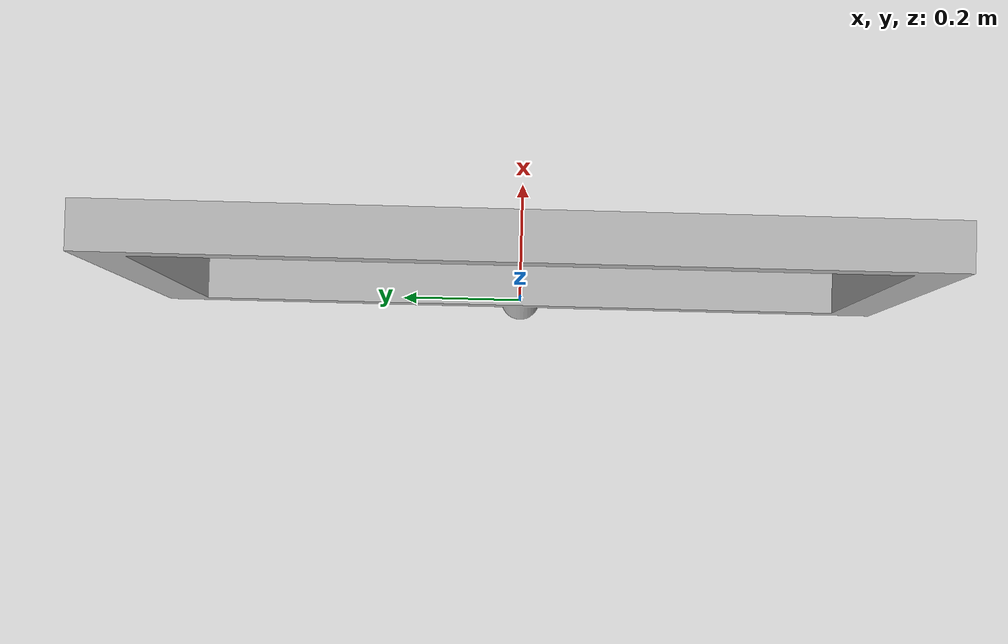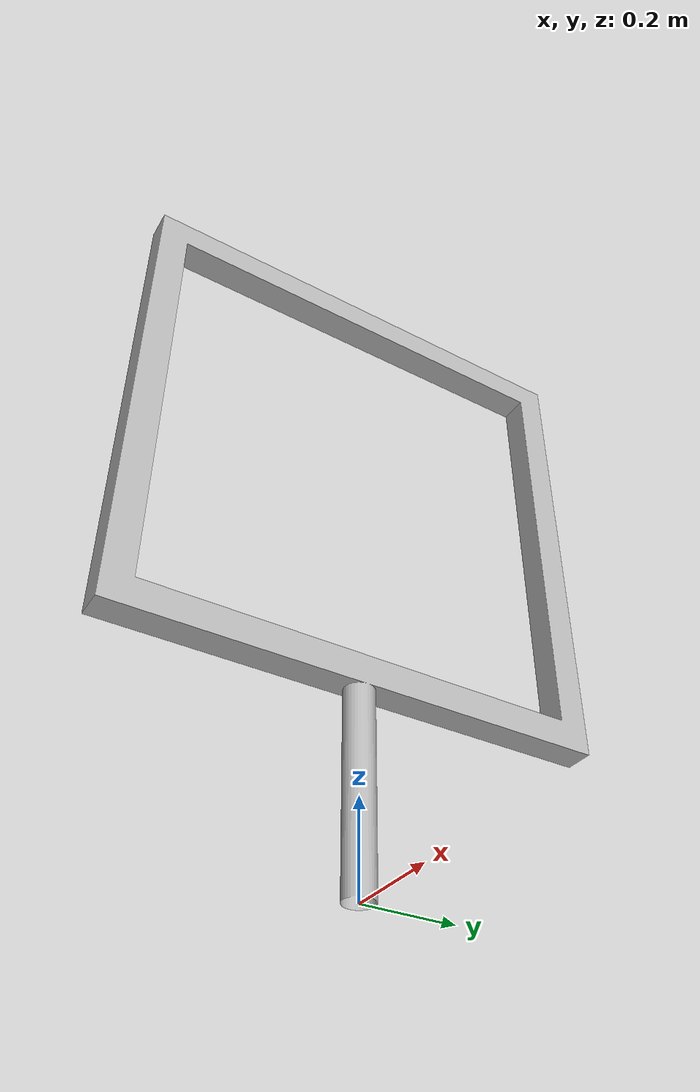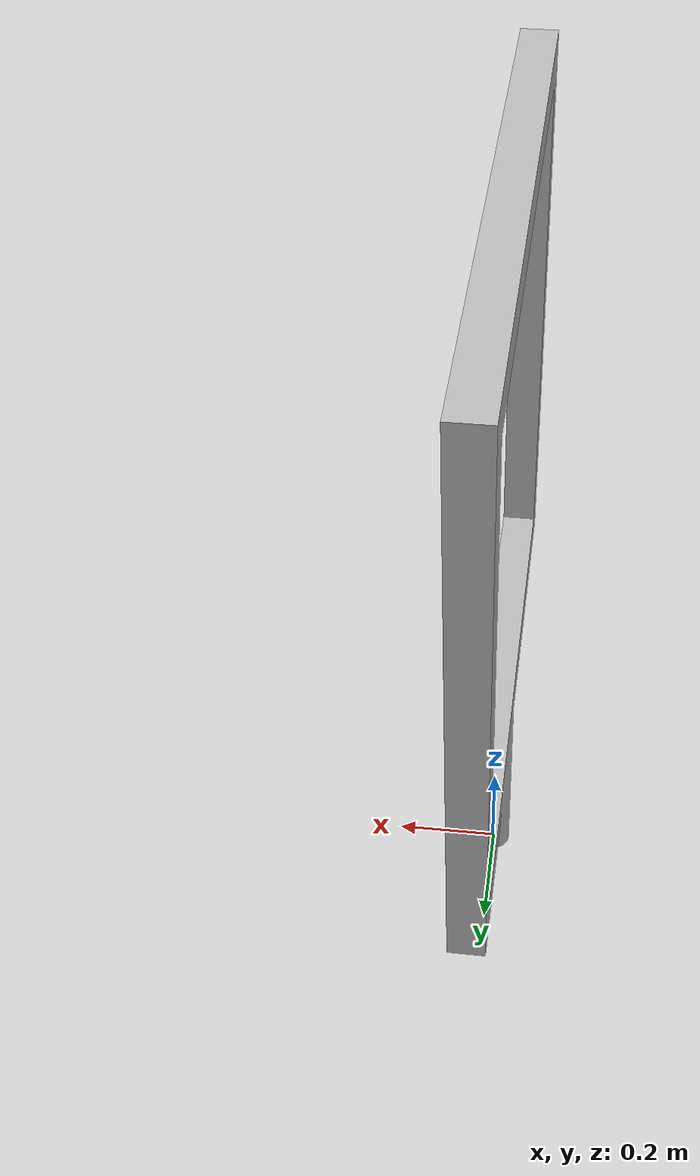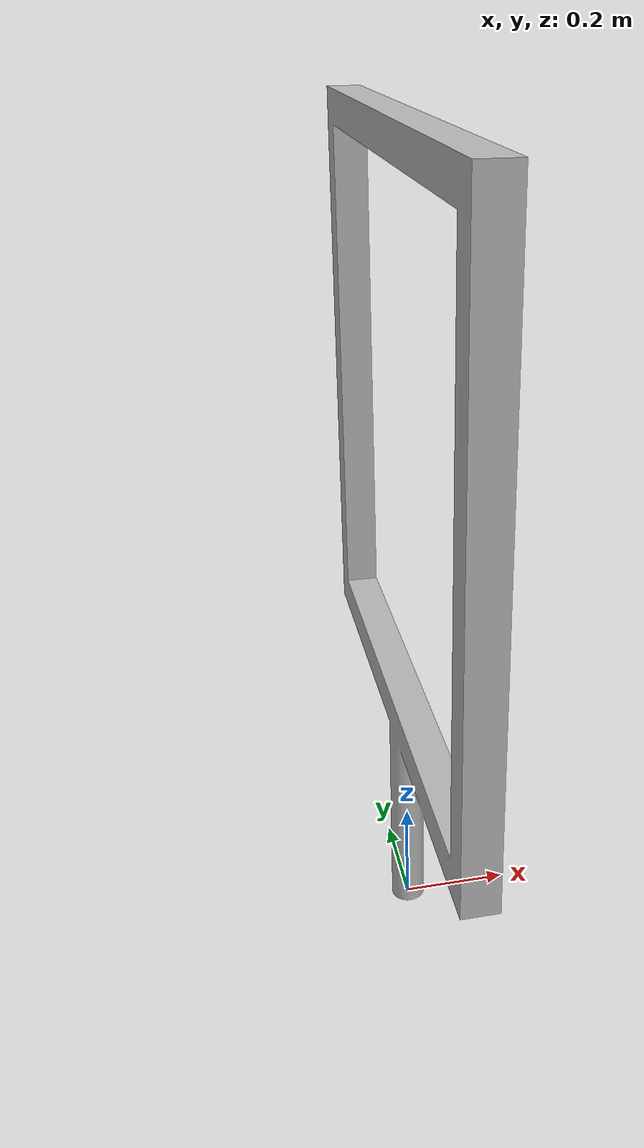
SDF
<?xml version="1.0"?>
<sdf version="1.5">
    <model name="frame_1_5">
        <static>true</static>
        <link name="link">
            <collision name="collision1">
                <pose>0 0 0 0 0 0</pose>
                <geometry>
                    <mesh>
                        <uri>model://frame_1.5/meshes/frame_1_5.stl</uri>
                    </mesh>
                </geometry>
            </collision>
            <visual name="visual1">

              <pose>0 0 0 0 0 0</pose>
              <geometry>
              <mesh>
                 <uri>model://frame_1.5/meshes/frame_1_5.dae</uri>
              </mesh>
              </geometry>

              <material>
                  <script>
                      <uri>model://frame_1.5/materials/scripts</uri>
                      <uri>model://frame_1.5/materials/textures</uri>
                      <name>frameMat/Diffuse</name>
                  </script>
              </material>
             </visual>

        </link>
    </model>
</sdf>
